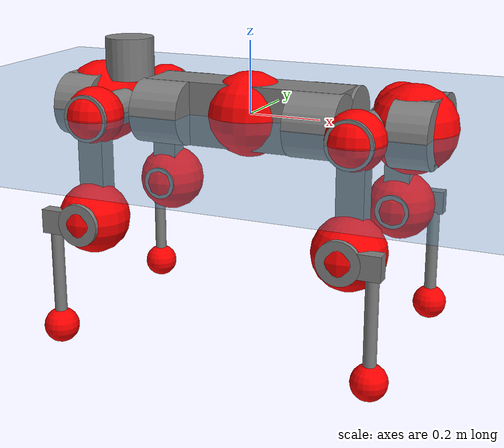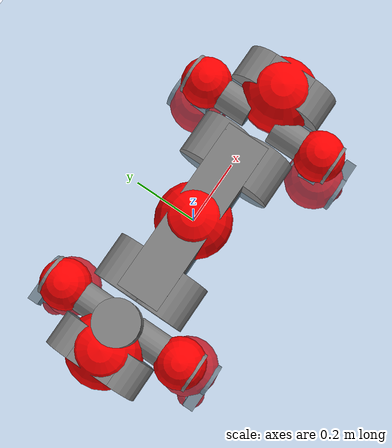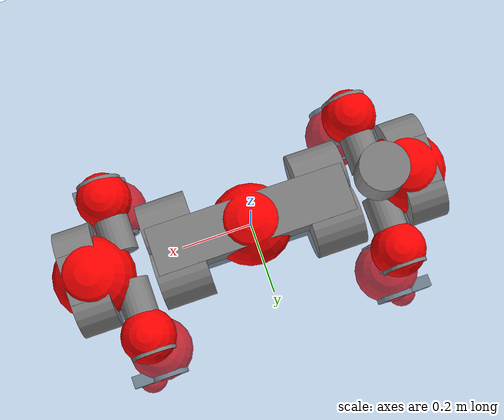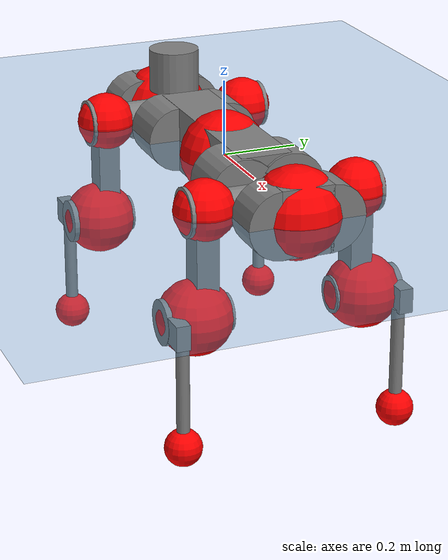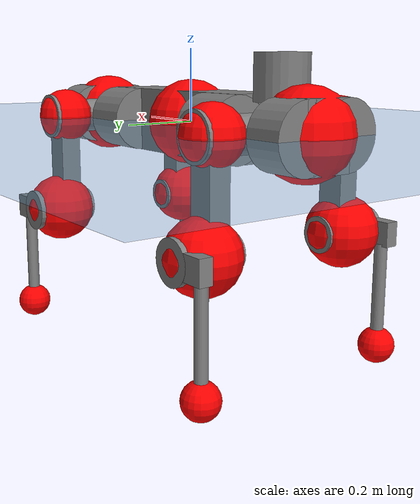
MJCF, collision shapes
<mujoco model="anymal_c">
  <compiler angle="radian" assetdir="assets" balanceinertia="true" inertiafromgeom="false"/>

  <option timestep="0.005" density="1.2" viscosity="2e-05"/>

  <size nkey="1"/>

  <visual>
    <quality shadowsize="8192"/>
    <map shadowclip="0.5"/>
  </visual>

  <default>
    <default class="/">
      <material specular="0" shininess="0.25"/>
      <geom contype="0" conaffinity="0" group="1" solref="-1000 -80"/>
      <site size="0.01 0.005 0.005" group="5"/>
      <general forcelimited="true" forcerange="-80 80" biastype="affine" gainprm="80" biasprm="0 -80 -2"/>
      <default class="anymal_c">
        <joint armature="0.01" damping="0.01" frictionloss="0.1"/>
        <default class="visual">
          <geom type="mesh" group="2"/>
          <default class="visual_zflip"/>
        </default>
        <default class="collision">
          <geom type="cylinder" group="3"/>
          <default class="foot">
            <geom size="0.03 0 0" type="sphere" condim="6" priority="1" friction="0.8 0.02 0.01" solimp="0.015 1 0.03"/>
          </default>
        </default>
      </default>
      <default class="reward_collision_sphere">
        <geom group="5" rgba="1 0 0 1"/>
      </default>
    </default>
  </default>

  <asset>
    <texture type="skybox" colorspace="auto" name="//unnamed_texture_0" builtin="gradient" rgb1="0.95 0.95 0.95" rgb2="0.95 0.95 0.95" width="100" height="600"/>
    <texture type="2d" colorspace="auto" name="texplane" builtin="checker" rgb1="0.345 0.575 0.748" rgb2="0.345 0.575 0.748" markrgb="1 1 1" width="512" height="512"/>
    <texture type="2d" colorspace="linear" name="base" file="base.png"/>
    <texture type="2d" colorspace="linear" name="top_shell" file="top_shell.png"/>
    <texture type="2d" colorspace="linear" name="bottom_shell" file="bottom_shell.png"/>
    <texture type="2d" colorspace="linear" name="remote" file="remote.png"/>
    <texture type="2d" colorspace="linear" name="hatch" file="hatch.png"/>
    <texture type="2d" colorspace="linear" name="handle" file="handle.png"/>
    <texture type="2d" colorspace="linear" name="face" file="face.png"/>
    <texture type="2d" colorspace="linear" name="battery" file="battery.png"/>
    <texture type="2d" colorspace="linear" name="lidar_cage" file="lidar_cage.png"/>
    <texture type="2d" colorspace="linear" name="depth_camera" file="depth_camera.png"/>
    <texture type="2d" colorspace="linear" name="wide_angle_camera" file="wide_angle_camera.png"/>
    <texture type="2d" colorspace="linear" name="lidar" file="lidar.png"/>
    <texture type="2d" colorspace="linear" name="drive" file="drive.png"/>
    <texture type="2d" colorspace="linear" name="hip_l" file="hip_l.png"/>
    <texture type="2d" colorspace="linear" name="shank_l" file="shank_l.png"/>
    <texture type="2d" colorspace="linear" name="foot" file="foot.png"/>
    <texture type="2d" colorspace="linear" name="thigh" file="thigh.png"/>
    <texture type="2d" colorspace="linear" name="shank_r" file="shank_r.png"/>
    <texture type="2d" colorspace="linear" name="hip_r" file="hip_r.png"/>
    <material name="MatPlane" class="/" texture="texplane" texuniform="true" texrepeat="2 2" specular="0.9" shininess="0.5"/>
    <material name="black_plastic" class="/" rgba="0.007 0.007 0.007 1"/>
    <material name="green" class="/" rgba="0.052 0.178 0.033 1"/>
    <material name="red" class="/" rgba="0.178 0.006 0.005 1"/>
    <material name="yellow" class="/" rgba="0.178 0.119 0.006 1"/>
    <material name="lwl" class="/" rgba="0.8 0.8 0.8 1"/>
    <material name="base" class="/" texture="base"/>
    <material name="top_shell" class="/" texture="top_shell"/>
    <material name="bottom_shell" class="/" texture="bottom_shell"/>
    <material name="hip_l" class="/" texture="hip_l"/>
    <material name="thigh" class="/" texture="thigh"/>
    <material name="shank_l" class="/" texture="shank_l"/>
    <material name="foot" class="/" texture="foot"/>
    <material name="hip_r" class="/" texture="hip_r"/>
    <material name="shank" class="/" texture="shank_r"/>
    <material name="hatch" class="/" texture="hatch"/>
    <material name="remote" class="/" texture="remote"/>
    <material name="handle" class="/" texture="handle"/>
    <material name="face" class="/" texture="face"/>
    <material name="depth_camera" class="/" texture="depth_camera"/>
    <material name="wide_angle_camera" class="/" texture="wide_angle_camera"/>
    <material name="battery" class="/" texture="battery"/>
    <material name="lidar_cage" class="/" texture="lidar_cage"/>
    <material name="lidar" class="/" texture="lidar"/>
    <material name="drive" class="/" texture="drive"/>
    <mesh name="base_0" class="/" file="base_0.obj"/>
    <mesh name="base_1" class="/" file="base_1.obj"/>
    <mesh name="base_2" class="/" file="base_2.obj"/>
    <mesh name="base_3" class="/" file="base_3.obj"/>
    <mesh name="base_4" class="/" file="base_4.obj"/>
    <mesh name="base_5" class="/" file="base_5.obj"/>
    <mesh name="top_shell" class="/" file="top_shell.obj"/>
    <mesh name="bottom_shell" class="/" file="bottom_shell.obj"/>
    <mesh name="remote" class="/" file="remote.obj"/>
    <mesh name="handle" class="/" file="handle.obj"/>
    <mesh name="face" class="/" file="face.obj"/>
    <mesh name="wide_angle_camera" class="/" file="wide_angle_camera.obj"/>
    <mesh name="depth_camera" class="/" file="depth_camera.obj"/>
    <mesh name="battery" class="/" file="battery.obj"/>
    <mesh name="lidar_cage" class="/" file="lidar_cage.obj"/>
    <mesh name="lidar" class="/" file="lidar.obj"/>
    <mesh name="drive" class="/" file="drive.obj"/>
    <mesh name="hip_l" class="/" file="hip_l.obj"/>
    <mesh name="thigh" class="/" file="thigh.obj"/>
    <mesh name="shank_l" class="/" file="shank_l.obj"/>
    <mesh name="foot" class="/" file="foot.obj"/>
    <mesh name="hip_r" class="/" file="hip_r.obj"/>
    <mesh name="hatch" class="/" file="hatch.obj"/>
    <mesh name="shank_r" class="/" file="shank_r.obj"/>
  </asset>

  <worldbody>
    <geom name="floor" class="/" size="100 100 0.125" type="plane" group="0" material="MatPlane"/>
    <light name="toplight_shadow" class="/" pos="0 0 5" dir="0.0990148 0.0990148 -0.990148" type="directional" ambient="0.04 0.04 0.04" diffuse="0.55 0.55 0.55" specular="0.12 0.12 0.12"/>
    <light name="toplight_fill" class="/" pos="0 0 5" dir="0.0990148 0.0990148 -0.990148" type="directional" castshadow="false" ambient="0.04 0.04 0.04" diffuse="0.3 0.3 0.3" specular="0.08 0.08 0.08"/>
    <body name="trunk" childclass="anymal_c" pos="-2.52451e-05 -4.16852e-05 0.000628851" quat="1 -0.000106218 4.78829e-05 2.26548e-05">
      <inertial pos="0.00212893 0.000678622 0.0472917" quat="0.500192 0.500074 0.499944 0.49979" mass="18.0513" diaginertia="0.71041 0.441258 0.194957"/>
      <joint name="//unnamed_joint_0" type="free" armature="0" damping="0" frictionloss="0"/>
      <geom name="//unnamed_geom_1" class="visual" material="green" mesh="base_0"/>
      <geom name="//unnamed_geom_2" class="visual" material="yellow" mesh="base_1"/>
      <geom name="//unnamed_geom_3" class="visual" material="red" mesh="base_2"/>
      <geom name="//unnamed_geom_4" class="visual" material="black_plastic" mesh="base_3"/>
      <geom name="//unnamed_geom_5" class="visual" material="lwl" mesh="base_4"/>
      <geom name="//unnamed_geom_6" class="visual" material="base" mesh="base_5"/>
      <geom name="trunk_1" class="collision" size="0.282857 0.0682758 0.0877831" type="box"/>
      <geom name="trunk_2" class="collision" size="0.0877831 0.0707142" pos="0.221572 0.0652082 0" quat="0.707107 0 0.707107 0"/>
      <geom name="trunk_3" class="collision" size="0.0877831 0.0707142" pos="-0.221572 0.0652082 0" quat="0.707107 0 0.707107 0"/>
      <geom name="trunk_4" class="collision" size="0.0877831 0.0707142" pos="0.221572 -0.0652082 0" quat="0.707107 0 0.707107 0"/>
      <geom name="trunk_5" class="collision" size="0.0877831 0.0707142" pos="-0.221572 -0.0652082 0" quat="0.707107 0 0.707107 0"/>
      <geom name="//unnamed_geom_12" class="visual" material="top_shell" mesh="top_shell"/>
      <geom name="//unnamed_geom_13" class="visual" material="bottom_shell" mesh="bottom_shell"/>
      <geom name="//unnamed_geom_14" class="visual" material="remote" mesh="remote"/>
      <geom name="//unnamed_geom_15" class="visual" material="handle" mesh="handle"/>
      <geom name="//unnamed_geom_16" class="visual" pos="0.42226 0 0" quat="1 0 0 0" material="face" mesh="face"/>
      <geom name="trunk_6" class="collision" size="0.0536452 0.0682758 0.0877831" pos="0.47829 0 0" type="box"/>
      <geom name="//unnamed_geom_18" class="collision" size="0.0877831 0.0536452" pos="0.47829 0.0652082 0" quat="0.707107 0 0.707107 0"/>
      <geom name="//unnamed_geom_19" class="collision" size="0.0877831 0.0536452" pos="0.47829 -0.0652082 0" quat="0.707107 0 0.707107 0"/>
      <geom name="//unnamed_geom_20" class="visual" pos="0.470291 0 -0.0281685" quat="0.965926 0 0.258819 0" material="depth_camera" mesh="depth_camera"/>
      <geom name="//unnamed_geom_21" class="visual" pos="0.522604 0 0.0146083" material="wide_angle_camera" mesh="wide_angle_camera"/>
      <geom name="//unnamed_geom_22" class="visual_zflip" pos="-0.42226 0 0" quat="0 0 0 1" material="face" mesh="face"/>
      <geom name="trunk_7" class="collision" size="0.0536452 0.0682758 0.0877831" pos="-0.47829 0 0" quat="0 0 0 1" type="box"/>
      <geom name="//unnamed_geom_24" class="collision" size="0.0877831 0.0536452" pos="-0.47829 -0.0652082 0" quat="0 -0.707107 0 0.707107"/>
      <geom name="//unnamed_geom_25" class="collision" size="0.0877831 0.0536452" pos="-0.47829 0.0652082 0" quat="0 -0.707107 0 0.707107"/>
      <geom name="//unnamed_geom_26" class="visual" pos="-0.470291 0 -0.0281685" quat="0 -0.258819 0 0.965926" material="depth_camera" mesh="depth_camera"/>
      <geom name="//unnamed_geom_27" class="visual_zflip" pos="-0.522604 0 0.0146083" quat="0 0 0 1" material="wide_angle_camera" mesh="wide_angle_camera"/>
      <geom name="//unnamed_geom_28" class="visual" material="battery" mesh="battery"/>
      <geom name="//unnamed_geom_29" class="visual" pos="0 0.0700802 0.028674" quat="0.683013 -0.183013 0.183013 0.683013" material="depth_camera" mesh="depth_camera"/>
      <geom name="//unnamed_geom_30" class="visual" pos="0 -0.0700802 0.028674" quat="0.683013 0.183013 0.183013 -0.683013" material="depth_camera" mesh="depth_camera"/>
      <geom name="//unnamed_geom_31" class="visual" pos="-0.370815 0 0.071724" quat="1 0 0 0" material="lidar_cage" mesh="lidar_cage"/>
      <geom name="trunk_8" class="collision" size="0.0682758 0.0585221" pos="-0.370815 0 0.130274"/>
      <geom name="//unnamed_geom_33" class="visual" pos="-0.370815 -3.42492e-05 0.138764" quat="0.707107 0 0 -0.707107" material="lidar" mesh="lidar"/>
      <geom name="//unnamed_geom_34" class="visual" pos="0.305515 0.0968964 -7.64039e-10" quat="0.258819 0.965926 0 0" material="drive" mesh="drive"/>
      <geom name="//unnamed_geom_35" class="visual" pos="0.305515 -0.0968964 7.64039e-10" quat="0.258819 -0.965926 0 0" material="drive" mesh="drive"/>
      <geom name="//unnamed_geom_36" class="visual" pos="-0.305515 0.0968964 7.64039e-10" quat="0 0 0.965926 -0.258819" material="drive" mesh="drive"/>
      <geom name="//unnamed_geom_37" class="visual" pos="-0.305515 -0.0968964 -7.64039e-10" quat="0 0 -0.965926 -0.258819" material="drive" mesh="drive"/>
      <geom name="//unnamed_geom_38" class="visual" pos="0.118172 0 0.0712361" quat="1 0 0 0" material="hatch" mesh="hatch"/>
      <geom name="//unnamed_geom_39" class="reward_collision_sphere" size="0.117044"/>
      <geom name="//unnamed_geom_40" class="reward_collision_sphere" size="0.117044" pos="0.458425 0 0"/>
      <geom name="//unnamed_geom_41" class="reward_collision_sphere" size="0.117044" pos="-0.458425 0 0"/>
      <site name="imu" pos="0.251846 0.0125143 0.0427534" size="0.00975368"/>
      <camera name="track" pos="0 -1.86309 0" quat="0.707107 0.707107 0 0" mode="trackcom"/>
      <camera name="ego_camera" pos="0.458425 0 -0.0390335" quat="-0.5 -0.5 0.5 0.5"/>
      <body name="LF_HIP" pos="0.305923 0.0976247 0.000566847" quat="0.258809 0.965928 -3.8275e-06 9.07101e-07">
        <inertial pos="0.0576322 -0.0138669 -0.00701655" quat="-0.127271 0.709085 -0.137184 0.679839" mass="2.57339" diaginertia="0.00643108 0.00349024 0.00287707"/>
        <joint name="LF_HAA" pos="0 0 0" axis="0.999999 0.00142646 -0.00095607" range="-0.704985 0.489427" armature="0.00933098" damping="0.00537176" frictionloss="0.0975541"/>
        <geom name="//unnamed_geom_42" class="visual" pos="0 -4.4945e-05 7.38217e-06" quat="0.258819 -0.965926 0 0" material="hip_l" mesh="hip_l"/>
        <geom name="//unnamed_geom_43" class="visual" pos="0.0610214 -0.0728084 -0.0423635" quat="0.183013 -0.683013 0.683013 0.183013" material="drive" mesh="drive"/>
        <geom name="//unnamed_geom_44" class="collision" size="0.0487684 0.0682758" pos="0.0610214 -0.0111411 -0.00673816" quat="-0.353553 -0.612372 0.612372 -0.353553"/>
        <body name="LF_THIGH" pos="0.0612561 -0.0677696 -0.0415272" quat="0.182955 -0.682972 0.683106 0.182876">
          <inertial pos="0.0317054 -3.47219e-05 -0.238751" quat="0.993197 -0.00497128 -0.0815859 0.0829431" mass="2.84583" diaginertia="0.0333311 0.0207894 0.00363319"/>
          <joint name="LF_HFE" pos="0 0 0" axis="0.999999 -8.86487e-05 -0.00137771" stiffness="0.00705671" range="-3.12869 3.12341" armature="0.00992725" damping="0.00825169" frictionloss="0.0980151"/>
          <geom name="//unnamed_geom_45" class="visual" pos="0.00173447 2.73311e-06 0" quat="0.707107 0 0 -0.707107" material="thigh" mesh="thigh"/>
          <geom name="//unnamed_geom_46" class="collision" size="0.0633989 0.0390147" pos="0.0407489 0 0" quat="0.5 0.5 -0.5 -0.5"/>
          <geom name="//unnamed_geom_47" class="collision" size="0.0365763 0.029261 0.137833" pos="0.0305616 0 -0.137899" quat="0.707107 0 0 -0.707107" type="box"/>
          <geom name="//unnamed_geom_48" class="visual" pos="0.102178 0 -0.278114" quat="1 0 0 0" material="drive" mesh="drive"/>
          <geom name="//unnamed_geom_49" class="collision" size="0.0487684 0.0682758" pos="0.0308673 0 -0.278114" quat="0.707107 0 0.707107 0"/>
          <geom name="//unnamed_geom_50" class="reward_collision_sphere" size="0.0780294" pos="0.025468 0 0"/>
          <body name="LF_SHANK" pos="0.102353 -0.00112956 -0.278928" quat="1 -7.57487e-05 -0.000364968 -0.00011287">
            <inertial pos="0.0057688 -0.0570835 -0.0786118" quat="0.992954 -0.115778 -0.00118622 -0.0252457" mass="0.552235" diaginertia="0.0111635 0.00645072 0.000993777"/>
            <joint name="LF_KFE" pos="0 0 0" axis="0.999987 0.00239098 -0.00440152" range="-3.13392 3.12894" armature="0.00997314" damping="0.0083062" frictionloss="0.100535"/>
            <geom name="//unnamed_geom_51" class="visual" pos="0.000565571 0.00301565 0" quat="0.707107 0 0 -0.707107" material="shank_l" mesh="shank_l"/>
            <geom name="LF_kfe_act" class="collision" size="0.0585221 0.0195074" pos="0.0203744 0 0" quat="0.5 0.5 -0.5 -0.5"/>
            <geom name="//unnamed_geom_53" class="collision" size="0.0560827 0.0329187 0.018532" pos="0.0203744 -0.0535629 0" quat="0.5 0.5 -0.5 -0.5" type="box"/>
            <geom name="//unnamed_geom_54" class="visual" pos="0.0132942 -0.0809576 -0.329804" quat="0.382683 0 0 -0.92388" material="foot" mesh="foot"/>
            <geom name="LF_calf" class="collision" size="0.0170689 0.137773" pos="0.0132943 -0.0819294 -0.164902" quat="0.707107 0 0 -0.707107"/>
            <geom name="LF_foot" class="foot" size="0.0305135" pos="0.0132943 -0.0819294 -0.307847" quat="0.707107 0 0 -0.707107"/>
            <geom name="//unnamed_geom_57" class="reward_collision_sphere" size="0.0975368" pos="-0.0509361 0 0"/>
            <geom name="//unnamed_geom_58" class="reward_collision_sphere" size="0.0487684" pos="0.0132943 -0.0819294 -0.307847"/>
            <site name="LF_foot" class="foot" pos="0.0132943 -0.0819294 -0.307847" quat="0.707107 0 0 -0.707107" size="0.00975368"/>
          </body>
        </body>
      </body>
      <body name="RF_HIP" pos="0.305542 -0.0965319 0.000439746" quat="0.258622 -0.965979 -4.09607e-05 -5.85823e-05">
        <inertial pos="0.0577484 0.0151458 -0.00870186" quat="0.135305 0.678642 0.12754 0.710543" mass="2.56497" diaginertia="0.00641052 0.00347183 0.00291316"/>
        <joint name="RF_HAA" pos="0 0 0" axis="1 1.9083e-05 0.000631504" range="-0.500247 0.710443" armature="0.00972317" damping="0.0103683" frictionloss="0.101681"/>
        <geom name="//unnamed_geom_59" class="visual" pos="0 4.49446e-05 7.38215e-06" quat="0.258819 0.965926 0 0" material="hip_r" mesh="hip_r"/>
        <geom name="//unnamed_geom_60" class="visual" pos="0.0610214 0.0728084 -0.0423635" quat="0.183013 0.683013 0.683013 -0.183013" material="drive" mesh="drive"/>
        <geom name="//unnamed_geom_61" class="collision" size="0.0487684 0.0682758" pos="0.0610214 0.0111411 -0.00673816" quat="-0.353553 0.612372 0.612372 0.353553"/>
        <body name="RF_THIGH" pos="0.0625757 0.0667882 -0.0417297" quat="0.182988 0.682869 0.683192 -0.182902">
          <inertial pos="0.0312664 -0.000466434 -0.239461" quat="0.99275 -0.00521437 -0.0809564 0.088688" mass="2.92741" diaginertia="0.0334523 0.021499 0.00378512"/>
          <joint name="RF_HFE" pos="0 0 0" axis="0.999988 0.00464179 -0.00142844" stiffness="0.00556353" range="-3.11595 3.12696" armature="0.00972845" damping="0.00812063" frictionloss="0.0957244"/>
          <geom name="//unnamed_geom_62" class="visual" pos="0.00173447 2.73311e-06 0" quat="0.707107 0 0 -0.707107" material="thigh" mesh="thigh"/>
          <geom name="//unnamed_geom_63" class="collision" size="0.0633989 0.0390147" pos="0.0407489 0 0" quat="0.5 0.5 0.5 0.5"/>
          <geom name="//unnamed_geom_64" class="collision" size="0.0365763 0.029261 0.137833" pos="0.0305616 0 -0.137899" quat="0.707107 0 0 0.707107" type="box"/>
          <geom name="//unnamed_geom_65" class="visual" pos="0.102178 0 -0.278114" quat="1 0 0 0" material="drive" mesh="drive"/>
          <geom name="//unnamed_geom_66" class="collision" size="0.0487684 0.0682758" pos="0.0308673 0 -0.278114" quat="0.707107 0 0.707107 0"/>
          <geom name="//unnamed_geom_67" class="reward_collision_sphere" size="0.0780294" pos="0.025468 0 0"/>
          <body name="RF_SHANK" pos="0.102521 0.000406756 -0.278684" quat="1 0.000100356 0.000151826 -0.000171733">
            <inertial pos="0.00619818 0.0567094 -0.0773728" quat="0.992928 0.115979 -0.000979724 0.0253407" mass="0.536036" diaginertia="0.0110229 0.00649392 0.000992119"/>
            <joint name="RF_KFE" pos="0 0 0" axis="0.999953 0.000826871 -0.00966869" stiffness="0.000464905" range="-3.13758 3.13653" armature="0.00978199" damping="0.0103658" frictionloss="0.0909571"/>
            <geom name="//unnamed_geom_68" class="visual" pos="0.000565568 -0.00301565 0" quat="0.707107 0 0 0.707107" material="shank" mesh="shank_r"/>
            <geom name="RF_kfe_act" class="collision" size="0.0585221 0.0195074" pos="0.0203744 0 0" quat="0.5 0.5 0.5 0.5"/>
            <geom name="//unnamed_geom_70" class="collision" size="0.0560827 0.0329187 0.018532" pos="0.0203744 0.0535629 0" quat="0.5 0.5 0.5 0.5" type="box"/>
            <geom name="//unnamed_geom_71" class="visual" pos="0.0132945 0.0809576 -0.329804" quat="0.382683 0 0 0.92388" material="foot" mesh="foot"/>
            <geom name="RF_calf" class="collision" size="0.0170689 0.137773" pos="0.0132943 0.0819294 -0.164902" quat="0.707107 0 0 0.707107"/>
            <geom name="RF_foot" class="foot" size="0.0300812" pos="0.0132943 0.0819294 -0.307847" quat="0.707107 0 0 0.707107"/>
            <geom name="//unnamed_geom_74" class="reward_collision_sphere" size="0.0975368" pos="-0.0509361 0 0"/>
            <geom name="//unnamed_geom_75" class="reward_collision_sphere" size="0.0487684" pos="0.0132943 0.0819294 -0.307847"/>
            <site name="RF_foot" class="foot" pos="0.0132943 0.0819294 -0.307847" quat="0.707107 0 0 0.707107" size="0.00975368"/>
          </body>
        </body>
      </body>
      <body name="LH_HIP" pos="-0.305555 0.097103 0.000306603" quat="8.43433e-05 -3.69372e-05 0.965932 -0.258797">
        <inertial pos="0.0587493 0.0138951 -0.00764892" quat="0.128665 0.681736 0.125029 0.70926" mass="2.53479" diaginertia="0.00640937 0.00341837 0.00294177"/>
        <joint name="LH_HAA" pos="0 0 0" axis="0.99999 -0.00230873 0.0039232" range="-0.485242 0.739444" armature="0.00972848" damping="0.0130277" frictionloss="0.0930533"/>
        <geom name="//unnamed_geom_76" class="visual" pos="0 4.49446e-05 7.38215e-06" quat="-0.258819 -0.965926 0 0" material="hip_r" mesh="hip_r"/>
        <geom name="//unnamed_geom_77" class="visual" pos="0.0610214 0.0728084 -0.0423635" quat="0.183013 0.683013 0.683013 -0.183013" material="drive" mesh="drive"/>
        <geom name="//unnamed_geom_78" class="collision" size="0.0487684 0.0682758" pos="0.0610214 0.0111411 -0.00673816" quat="-0.353553 0.612372 0.612372 0.353553"/>
        <body name="LH_THIGH" pos="0.0606009 0.0680104 -0.0415405" quat="0.18274 0.683178 0.682925 -0.182997">
          <inertial pos="0.0317076 0.000552526 -0.239599" quat="0.992743 -0.00679031 -0.0824207 0.0873025" mass="2.87836" diaginertia="0.0332501 0.0213943 0.00369192"/>
          <joint name="LH_HFE" pos="0 0 0" axis="1 -0.000928656 1.03584e-05" range="-3.14391 3.14051" armature="0.00975099" damping="0.00550054" frictionloss="0.098116"/>
          <geom name="//unnamed_geom_79" class="visual" pos="0.00173447 2.73311e-06 0" quat="0.707107 0 0 -0.707107" material="thigh" mesh="thigh"/>
          <geom name="//unnamed_geom_80" class="collision" size="0.0633989 0.0390147" pos="0.0407489 0 0" quat="0.5 0.5 -0.5 -0.5"/>
          <geom name="//unnamed_geom_81" class="collision" size="0.0365763 0.029261 0.137833" pos="0.0305616 0 -0.137899" quat="0.707107 0 0 -0.707107" type="box"/>
          <geom name="//unnamed_geom_82" class="visual" pos="0.102178 0 -0.278114" quat="1 0 0 0" material="drive" mesh="drive"/>
          <geom name="//unnamed_geom_83" class="collision" size="0.0487684 0.0682758" pos="0.0308673 0 -0.278114" quat="0.707107 0 0.707107 0"/>
          <geom name="//unnamed_geom_84" class="reward_collision_sphere" size="0.0780294" pos="0.025468 0 0"/>
          <body name="LH_SHANK" pos="0.102233 -0.000554942 -0.278472" quat="1 -0.000136687 2.08179e-05 0.000164359">
            <inertial pos="0.00523119 0.0573197 -0.0779339" quat="0.99293 0.115977 -0.00113362 0.0252531" mass="0.554222" diaginertia="0.0113828 0.00664958 0.00102878"/>
            <joint name="LH_KFE" pos="0 0 0" axis="0.999993 0.00226705 -0.00307334" range="-3.14257 3.10897" armature="0.0098218" damping="0.00689938" frictionloss="0.0932394"/>
            <geom name="//unnamed_geom_85" class="visual" pos="0.000565568 -0.00301565 0" quat="-0.707107 0 0 -0.707107" material="shank" mesh="shank_r"/>
            <geom name="LH_kfe_act" class="collision" size="0.0585221 0.0195074" pos="0.0203744 0 0" quat="0.5 0.5 -0.5 -0.5"/>
            <geom name="//unnamed_geom_87" class="collision" size="0.0560827 0.0329187 0.018532" pos="0.0203744 0.0535629 0" quat="0.5 0.5 -0.5 -0.5" type="box"/>
            <geom name="//unnamed_geom_88" class="visual" pos="0.0132945 0.0809576 -0.329804" quat="-0.382683 0 0 -0.92388" material="foot" mesh="foot"/>
            <geom name="LH_calf" class="collision" size="0.0170689 0.137773" pos="0.0132943 0.0819294 -0.164902" quat="0.707107 0 0 -0.707107"/>
            <geom name="LH_foot" class="foot" size="0.0295464" pos="0.0132943 0.0819294 -0.307847" quat="0.707107 0 0 -0.707107"/>
            <geom name="//unnamed_geom_91" class="reward_collision_sphere" size="0.0975368" pos="-0.0509361 0 0"/>
            <geom name="//unnamed_geom_92" class="reward_collision_sphere" size="0.0487684" pos="0.0132943 0.0819294 -0.307847"/>
            <site name="LH_foot" class="foot" pos="0.0132943 0.0819294 -0.307847" quat="0.707107 0 0 -0.707107" size="0.00975368"/>
          </body>
        </body>
      </body>
      <body name="RH_HIP" pos="-0.305669 -0.0974025 0.000774028" quat="-1.49525e-05 0.000124258 -0.965901 -0.258911">
        <inertial pos="0.0581567 -0.0152311 -0.00746259" quat="-0.122693 0.712448 -0.132604 0.678071" mass="2.60147" diaginertia="0.00641948 0.00352442 0.00293705"/>
        <joint name="RH_HAA" pos="0 0 0" axis="0.999999 0.000484849 0.00156089" stiffness="0.00113208" range="-0.726898 0.496136" armature="0.00960199" damping="0.0089223" frictionloss="0.0932826"/>
        <geom name="//unnamed_geom_93" class="visual" pos="0 -4.4945e-05 7.38217e-06" quat="-0.258819 0.965926 0 0" material="hip_l" mesh="hip_l"/>
        <geom name="//unnamed_geom_94" class="visual" pos="0.0610214 -0.0728084 -0.0423635" quat="-0.183013 0.683013 -0.683013 -0.183013" material="drive" mesh="drive"/>
        <geom name="//unnamed_geom_95" class="collision" size="0.0487684 0.0682758" pos="0.0610214 -0.0111411 -0.00673816" quat="0.353553 0.612372 -0.612372 0.353553"/>
        <body name="RH_THIGH" pos="0.060546 -0.0677277 -0.0422604" quat="-0.183041 0.682973 -0.68304 -0.183033">
          <inertial pos="0.0315908 0.00134739 -0.240521" quat="0.993209 -0.00521017 -0.0813659 0.0830019" mass="2.80419" diaginertia="0.0327245 0.0206204 0.00363561"/>
          <joint name="RH_HFE" pos="0 0 0" axis="0.999992 -0.00380684 -0.00136333" range="-3.15433 3.13245" armature="0.0104679" damping="0.0079311" frictionloss="0.0970299"/>
          <geom name="//unnamed_geom_96" class="visual" pos="0.00173447 2.73311e-06 0" quat="0.707107 0 0 -0.707107" material="thigh" mesh="thigh"/>
          <geom name="//unnamed_geom_97" class="collision" size="0.0633989 0.0390147" pos="0.0407489 0 0" quat="0.5 0.5 0.5 0.5"/>
          <geom name="//unnamed_geom_98" class="collision" size="0.0365763 0.029261 0.137833" pos="0.0305616 0 -0.137899" quat="0.707107 0 0 0.707107" type="box"/>
          <geom name="//unnamed_geom_99" class="visual" pos="0.102178 0 -0.278114" quat="1 0 0 0" material="drive" mesh="drive"/>
          <geom name="//unnamed_geom_100" class="collision" size="0.0487684 0.0682758" pos="0.0308673 0 -0.278114" quat="0.707107 0 0.707107 0"/>
          <geom name="//unnamed_geom_101" class="reward_collision_sphere" size="0.0780294" pos="0.025468 0 0"/>
          <body name="RH_SHANK" pos="0.102493 0.000874564 -0.278573" quat="1 -0.000108374 0.000108546 -0.000130279">
            <inertial pos="0.00474439 -0.0571529 -0.0786016" quat="0.992754 -0.116285 -0.00124828 -0.0302751" mass="0.548763" diaginertia="0.0113506 0.00655983 0.00101969"/>
            <joint name="RH_KFE" pos="0 0 0" axis="0.999996 -0.00256018 0.000698598" range="-3.12678 3.14179" armature="0.00989153" damping="0.0082846" frictionloss="0.0997652"/>
            <geom name="//unnamed_geom_102" class="visual" pos="0.000565571 0.00301565 0" quat="0.707107 0 0 -0.707107" material="shank_l" mesh="shank_l"/>
            <geom name="RH_kfe_act" class="collision" size="0.0585221 0.0195074" pos="0.0203744 0 0" quat="0.5 0.5 0.5 0.5"/>
            <geom name="//unnamed_geom_104" class="collision" size="0.0560827 0.0329187 0.018532" pos="0.0203744 -0.0535629 0" quat="0.5 0.5 0.5 0.5" type="box"/>
            <geom name="//unnamed_geom_105" class="visual" pos="0.0132942 -0.0809576 -0.329804" quat="0.382683 0 0 -0.92388" material="foot" mesh="foot"/>
            <geom name="RH_calf" class="collision" size="0.0170689 0.137773" pos="0.0132943 -0.0819294 -0.164902" quat="0.707107 0 0 0.707107"/>
            <geom name="RH_foot" class="foot" size="0.0257144" pos="0.0132943 -0.0819294 -0.307847" quat="0.707107 0 0 0.707107"/>
            <geom name="//unnamed_geom_108" class="reward_collision_sphere" size="0.0975368" pos="-0.0509361 0 0"/>
            <geom name="//unnamed_geom_109" class="reward_collision_sphere" size="0.0487684" pos="0.0132943 -0.0819294 -0.307847"/>
            <site name="RH_foot" class="foot" pos="0.0132943 -0.0819294 -0.307847" quat="0.707107 0 0 0.707107" size="0.00975368"/>
          </body>
        </body>
      </body>
    </body>
  </worldbody>

  <contact>
    <pair class="/" geom1="floor" geom2="LF_foot" name="//unnamed_contact_0"/>
    <pair class="/" geom1="floor" geom2="RF_foot" name="//unnamed_contact_1"/>
    <pair class="/" geom1="floor" geom2="LH_foot" name="//unnamed_contact_2"/>
    <pair class="/" geom1="floor" geom2="RH_foot" name="//unnamed_contact_3"/>
  </contact>

  <actuator>
    <general name="LF_HAA" class="/" joint="LF_HAA" forcerange="-81.4824 81.4824" gainprm="79.6528" biasprm="0 -79.6528 -1.89315"/>
    <general name="LF_HFE" class="/" joint="LF_HFE" forcerange="-74.3373 74.3373" gainprm="79.6528" biasprm="0 -79.6528 -1.89315"/>
    <general name="LF_KFE" class="/" joint="LF_KFE" forcerange="-79.023 79.023" gainprm="79.6528" biasprm="0 -79.6528 -1.89315"/>
    <general name="RF_HAA" class="/" joint="RF_HAA" forcerange="-78.1629 78.1629" gainprm="79.6528" biasprm="0 -79.6528 -1.89315"/>
    <general name="RF_HFE" class="/" joint="RF_HFE" forcerange="-77.1666 77.1666" gainprm="79.6528" biasprm="0 -79.6528 -1.89315"/>
    <general name="RF_KFE" class="/" joint="RF_KFE" forcerange="-80.4784 80.4784" gainprm="79.6528" biasprm="0 -79.6528 -1.89315"/>
    <general name="LH_HAA" class="/" joint="LH_HAA" forcerange="-76.261 76.261" gainprm="79.6528" biasprm="0 -79.6528 -1.89315"/>
    <general name="LH_HFE" class="/" joint="LH_HFE" forcerange="-78.4521 78.4521" gainprm="79.6528" biasprm="0 -79.6528 -1.89315"/>
    <general name="LH_KFE" class="/" joint="LH_KFE" forcerange="-81.3367 81.3367" gainprm="79.6528" biasprm="0 -79.6528 -1.89315"/>
    <general name="RH_HAA" class="/" joint="RH_HAA" forcerange="-75.0454 75.0454" gainprm="79.6528" biasprm="0 -79.6528 -1.89315"/>
    <general name="RH_HFE" class="/" joint="RH_HFE" forcerange="-76.9781 76.9781" gainprm="79.6528" biasprm="0 -79.6528 -1.89315"/>
    <general name="RH_KFE" class="/" joint="RH_KFE" forcerange="-76.8889 76.8889" gainprm="79.6528" biasprm="0 -79.6528 -1.89315"/>
  </actuator>

  <sensor>
    <gyro site="imu" name="imu_angular_velocity"/>
    <velocimeter site="imu" name="imu_linear_velocity"/>
    <framelinvel objtype="site" objname="LF_foot" name="LF_foot_global_linear_velocity"/>
    <framelinvel objtype="site" objname="RF_foot" name="RF_foot_global_linear_velocity"/>
    <framelinvel objtype="site" objname="LH_foot" name="LH_foot_global_linear_velocity"/>
    <framelinvel objtype="site" objname="RH_foot" name="RH_foot_global_linear_velocity"/>
  </sensor>

  <keyframe>
    <key name="home" qpos="0 0 0.55 1 0 0 0 0 0.4 -0.8 0 -0.4 0.8 0 -0.4 0.8 0 0.4 -0.8"/>
  </keyframe>
</mujoco>
